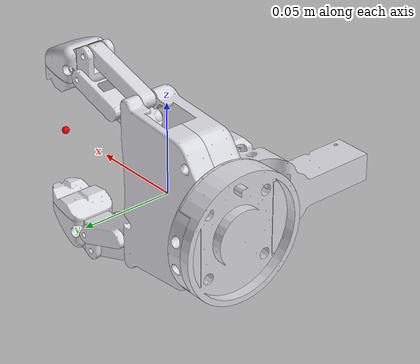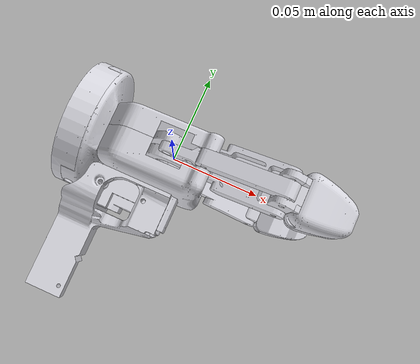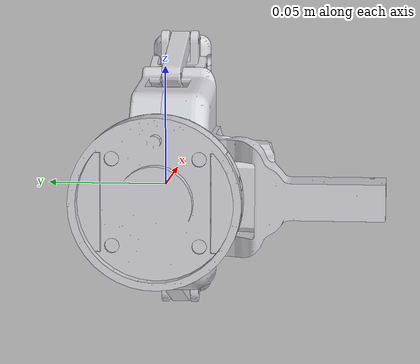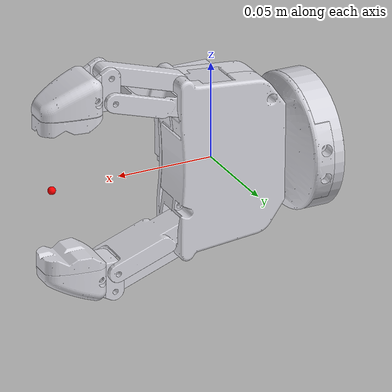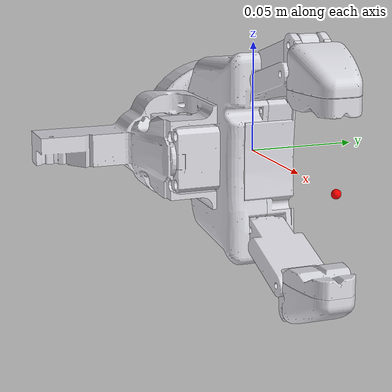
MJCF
<mujoco model="pincopen_try3">
  <!-- GENERATED by ur10sim/build_pincopen.py (gripper revision try3); edit the generator, not this file -->
  <compiler angle="radian" meshdir="meshes" autolimits="true"/>
  <option timestep="0.001" integrator="implicitfast" impratio="10" noslip_iterations="3"/>
  <default>
    <joint armature="2e-5" damping="0.005"/>
    <default class="visual"><geom type="mesh" contype="0" conaffinity="0" group="1" rgba="0.85 0.85 0.88 1"/></default>
    <default class="pad"><geom type="box" group="3" friction="1.2 0.02 0.002" condim="4" solref="0.004 1" solimp="0.95 0.99 0.001" margin="0.0005" rgba="0.1 0.6 0.1 0.3"/></default>
  </default>
  <asset>
    <mesh name="Bottom_Plate-1" file="Bottom_Plate-1.stl"/>
    <mesh name="Top_Plate-1" file="Top_Plate-1.stl"/>
    <mesh name="Part1-2" file="Part1-2.stl"/>
    <mesh name="Mount_ARM-1" file="Mount_ARM-1.stl"/>
    <mesh name="XMH430_mount-1" file="XMH430_mount-1.stl"/>
    <mesh name="DUMMY_DC12_stp-1" file="DUMMY_DC12_stp-1.stl"/>
    <mesh name="Cam-1" file="Cam-1.stl"/>
    <mesh name="Driving_Rod-1" file="Driving_Rod-1.stl"/>
    <mesh name="Driving_Rod-2" file="Driving_Rod-2.stl"/>
    <mesh name="Internal_Rod-2" file="Internal_Rod-2.stl"/>
    <mesh name="Internal_Rod-1" file="Internal_Rod-1.stl"/>
    <mesh name="External_Rod-2" file="External_Rod-2.stl"/>
    <mesh name="External_Rod-1" file="External_Rod-1.stl"/>
    <mesh name="Distal_Rod-1" file="Distal_Rod-1.stl"/>
    <mesh name="Distal_Shell-2" file="Distal_Shell-2.stl"/>
    <mesh name="Tip_Support-2" file="Tip_Support-2.stl"/>
    <mesh name="Removable_Tip-2" file="Removable_Tip-2.stl"/>
    <mesh name="Distal_Rod-2" file="Distal_Rod-2.stl"/>
    <mesh name="Distal_Shell-1" file="Distal_Shell-1.stl"/>
    <mesh name="Tip_Support-1" file="Tip_Support-1.stl"/>
    <mesh name="Removable_Tip-1" file="Removable_Tip-1.stl"/>
  </asset>
  <worldbody>
    <body name="pincopen_base" pos="0 0 0">
      <inertial pos="0.0 0 0" mass="0.183910" diaginertia="1e-4 1e-4 1e-4"/>
      <geom class="visual" mesh="Bottom_Plate-1"/>
      <geom class="visual" mesh="Top_Plate-1"/>
      <geom class="visual" mesh="Part1-2"/>
      <geom class="visual" mesh="Mount_ARM-1"/>
      <geom class="visual" mesh="XMH430_mount-1"/>
      <geom class="visual" mesh="DUMMY_DC12_stp-1"/>
      <site name="jaw_center" pos="0.0850 0 0.0" size="0.002" rgba="1 0 0 1"/>
      <body name="cam" pos="0.000000 0.000000 0.000000">
        <inertial pos="0.000039 -0.000947 -0.000009" mass="0.004599" fullinertia="3.3424e-07 6.2809e-07 3.2627e-07 -1.3391e-10 7.3185e-09 1.1356e-10"/>
        <joint name="cam_joint" type="hinge" axis="0 -1 0" range="-1.24791 0.97738" limited="true" damping="0.02"/>
        <geom class="visual" mesh="Cam-1" pos="-0.000000 -0.000000 -0.000000"/>
        <body name="dr_L" pos="-0.009300 0.000000 -0.005800">
          <inertial pos="0.000707 0.004851 0.017435" mass="0.001652" fullinertia="2.1481e-07 2.4180e-07 3.3847e-08 8.1579e-12 -4.7488e-08 1.8791e-11"/>
          <joint name="dr_L_joint" type="hinge" axis="0 -1 0" damping="0.001"/>
        <geom class="visual" mesh="Driving_Rod-1" pos="0.009300 -0.000000 0.005800"/>
        </body>
        <body name="dr_R" pos="0.009500 0.000000 0.005600">
          <inertial pos="-0.003049 0.004851 -0.017208" mass="0.001652" fullinertia="1.9893e-07 2.4180e-07 4.9731e-08 -1.0604e-11 -6.9838e-08 -1.7526e-11"/>
          <joint name="dr_R_joint" type="hinge" axis="0 -1 0" damping="0.001"/>
        <geom class="visual" mesh="Driving_Rod-2" pos="-0.009500 -0.000000 -0.005600"/>
        </body>
      </body>
      <body name="ir_L" pos="0.013500 0.000000 0.031100">
        <inertial pos="0.016318 -0.000149 0.004350" mass="0.005560" fullinertia="4.5400e-07 1.6318e-06 1.7589e-06 1.4770e-10 -4.0971e-07 5.4834e-11"/>
        <joint name="ir_L_joint" type="hinge" axis="0 -1 0" damping="0.001"/>
        <geom class="visual" mesh="Internal_Rod-2" pos="-0.013500 -0.000000 -0.031100"/>
        <body name="tip_L" pos="0.042800 0.000000 0.013100">
          <inertial pos="0.015367 -0.000452 -0.000813" mass="0.012199" fullinertia="1.0634e-06 1.8186e-06 1.8119e-06 -6.5189e-11 3.4853e-07 1.6279e-10"/>
          <joint name="tip_L_joint" type="hinge" axis="0 -1 0" damping="0.001"/>
        <geom class="visual" mesh="Distal_Rod-1" pos="-0.056300 -0.000000 -0.044200"/>
        <geom class="visual" mesh="Distal_Shell-2" pos="-0.056300 -0.000000 -0.044200"/>
        <geom class="visual" mesh="Tip_Support-2" pos="-0.056300 -0.000000 -0.044200"/>
        <geom class="visual" mesh="Removable_Tip-2" pos="-0.056300 -0.000000 -0.044200"/>
          <geom class="pad" name="pad_L" pos="0.024000 -0.000450 -0.010500" size="0.01000 0.01285 0.00200"/>
        </body>
      </body>
      <body name="or_L" pos="0.018100 0.000000 0.044000">
        <inertial pos="0.019098 -0.000648 0.005850" mass="0.003246" fullinertia="8.6087e-08 5.9376e-07 5.4211e-07 -1.6912e-15 -1.5405e-07 2.5129e-15"/>
        <joint name="or_L_joint" type="hinge" axis="0 -1 0" damping="0.001"/>
        <geom class="visual" mesh="External_Rod-2" pos="-0.018100 -0.000000 -0.044000"/>
      </body>
      <body name="ir_R" pos="0.013300 0.000000 -0.030800">
        <inertial pos="0.016351 -0.000147 -0.005255" mass="0.005560" fullinertia="4.9919e-07 1.6318e-06 1.7137e-06 -1.4448e-10 4.7412e-07 6.2342e-11"/>
        <joint name="ir_R_joint" type="hinge" axis="0 -1 0" damping="0.001"/>
        <geom class="visual" mesh="Internal_Rod-1" pos="-0.013300 -0.000000 0.030800"/>
        <body name="tip_R" pos="0.042400 0.000000 -0.015400">
          <inertial pos="0.015319 -0.000445 0.000865" mass="0.012199" fullinertia="1.0634e-06 1.8186e-06 1.8119e-06 6.5513e-11 -3.4853e-07 1.6271e-10"/>
          <joint name="tip_R_joint" type="hinge" axis="0 -1 0" damping="0.001"/>
        <geom class="visual" mesh="Distal_Rod-2" pos="-0.055700 -0.000000 0.046200"/>
        <geom class="visual" mesh="Distal_Shell-1" pos="-0.055700 -0.000000 0.046200"/>
        <geom class="visual" mesh="Tip_Support-1" pos="-0.055700 -0.000000 0.046200"/>
        <geom class="visual" mesh="Removable_Tip-1" pos="-0.055700 -0.000000 0.046200"/>
          <geom class="pad" name="pad_R" pos="0.024600 -0.000450 0.010500" size="0.01000 0.01285 0.00200"/>
        </body>
      </body>
      <body name="or_R" pos="0.018100 0.000000 -0.044000">
        <inertial pos="0.018774 -0.000648 -0.006829" mass="0.003246" fullinertia="1.0299e-07 5.9376e-07 5.2521e-07 -4.3040e-16 1.7650e-07 -1.2102e-15"/>
        <joint name="or_R_joint" type="hinge" axis="0 -1 0" damping="0.001"/>
        <geom class="visual" mesh="External_Rod-1" pos="-0.018100 -0.000000 0.044000"/>
      </body>
    </body>
  </worldbody>
  <equality>
    <connect name="loop_dr_ir_L" body1="dr_L" body2="ir_L" anchor="0.007100 0.000000 0.031800" solref="0.006 1" solimp="0.95 0.99 0.001"/>
    <connect name="loop_or_tip_L" body1="or_L" body2="tip_L" anchor="0.038200 0.000000 0.011700" solref="0.006 1" solimp="0.95 0.99 0.001"/>
    <connect name="loop_dr_ir_R" body1="dr_R" body2="ir_R" anchor="-0.011300 0.000000 -0.030600" solref="0.006 1" solimp="0.95 0.99 0.001"/>
    <connect name="loop_or_tip_R" body1="or_R" body2="tip_R" anchor="0.037600 0.000000 -0.013700" solref="0.006 1" solimp="0.95 0.99 0.001"/>
  </equality>
  <actuator>
    <general name="cam_act" joint="cam_joint" gainprm="60" biastype="affine" biasprm="0 -60 -1.0" ctrlrange="-1.24791 0.97738" forcerange="-1 1"/>
  </actuator>
</mujoco>
